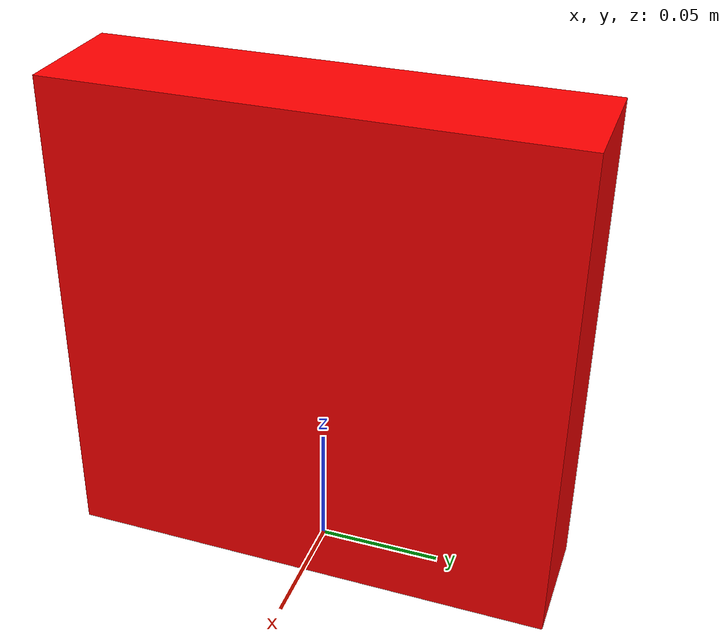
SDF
<?xml version="1.0" ?>
<sdf version="1.5">
  <model name="rectPrismAV">
    <link name="link">
      <pose>0 0 0.1 0 0 0</pose>
      <inertial>
        <mass>8.2672</mass>
        <inertia>
          <ixx>0.05511466666</ixx>
          <ixy>0</ixy>
          <ixz>0</ixz>
          <iyy>0.02927966666</iyy>
          <iyz>0</iyz>
          <izz>0.02927966666</izz>
        </inertia>
      </inertial>

      <collision name="collision">
        <geometry>
          <box>
            <size>0.05 0.2 0.2</size>
          </box>
        </geometry>
        <surface>
          <friction>
            <ode>
              <mu>1.0</mu>
              <mu2>1.0</mu2>
            </ode>
          </friction>
        </surface>
            <!-- Red Pine coefficients for longitudinal axis of the wood
                 according to:
                 http://www.fpl.fs.fed.us/documnts/fplgtr/fplgtr113/ch04.pdf -->
      </collision>

      <visual name="visual">
        <geometry>
          <box>
            <size>0.05 0.2 0.2</size>
          </box>
        </geometry>
        <material>
          <ambient>1 0 0 1</ambient>
          <diffuse>1 0 0 1</diffuse>
          <specular>0.1 0.1 0.1 1</specular>
          <emissive>0 0 0 0</emissive>
        </material>
      </visual>

    </link>
  </model>
</sdf>
